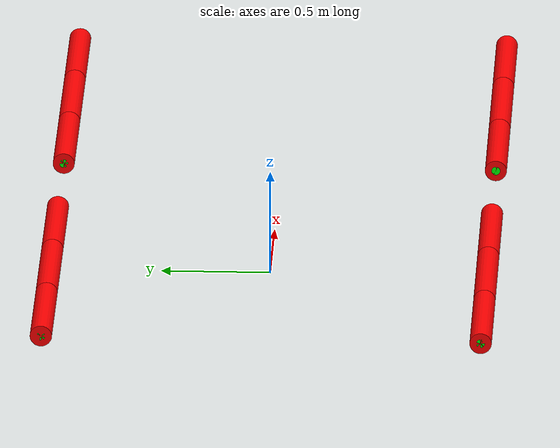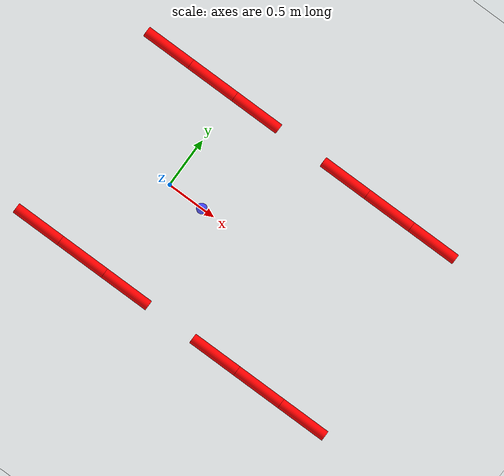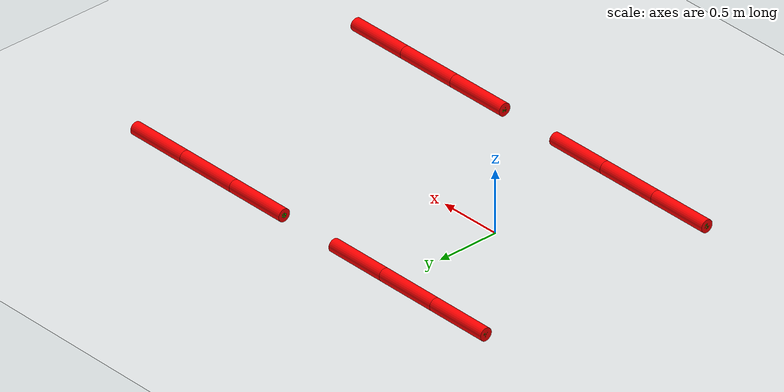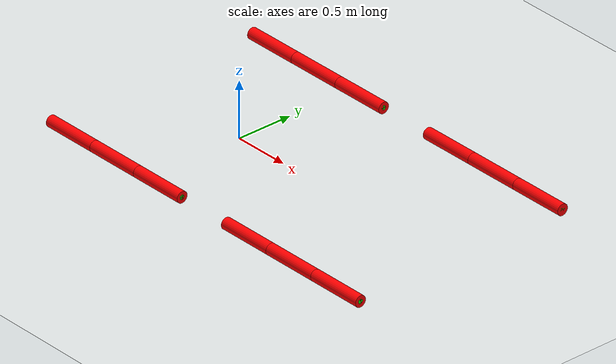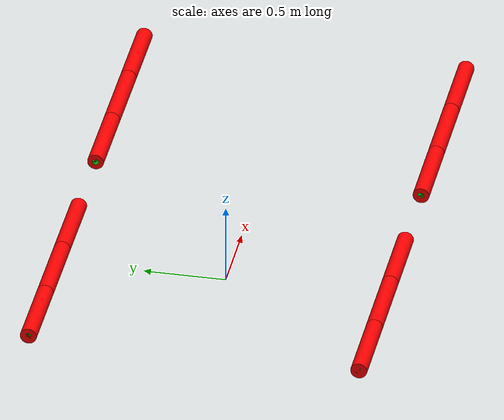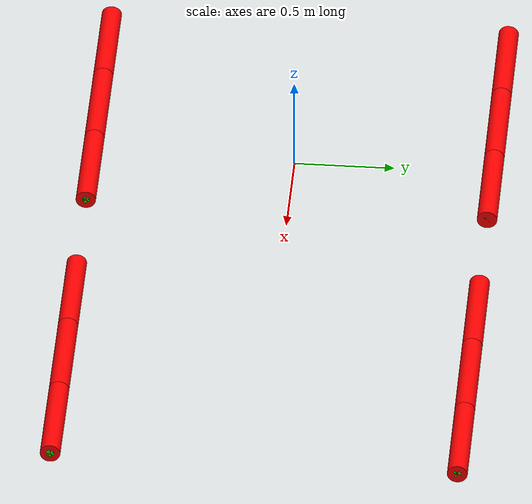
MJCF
<mujoco>
	<asset>
		<material name="red"   rgba="1 0 0 1"/>
		<material name="green" rgba="0 1 0 1"/>
		<material name="blue"  rgba="0 0 1 1"/>
		<material name="white" rgba="1 1 1 1"/>
		<material name="gray"  rgba=".5 .5 .5 1"/>
	</asset>

    <worldbody>
        <body name="link 0-0" pos="-0.75 -1 0.1" euler="0 90 0">
            <joint name="joint 0-0" type="hinge" axis="-1 0 0" pos="0 0 -0.25"/>
            <geom name="geom link 0-0" type="cylinder" size="0.05 0.25" material="red"/>
            <body name="link 0-1" pos="0 0 0.5" euler="0 0 0">
                <joint name="joint 0-1" type="hinge" axis="-1 0 0" pos="0 0 -0.25"/>
                <geom name="geom link 0-1" type="cylinder" size="0.05 0.25" material="red"/>
                <body name="link 0-2" pos="0 0 0.5" euler="0 0 0">
                    <joint name="joint 0-2" type="hinge" axis="-1 0 0" pos="0 0 -0.25"/>
                    <geom name="geom link 0-2" type="cylinder" size="0.05 0.25" material="red"/>
                </body>
            </body>
        </body>

        <body name="link 1-0" pos="1.25 -1 0.1" euler="0 90 0">
            <joint name="joint 1-0" type="hinge" axis="-1 0 0" pos="0 0 -0.25"/>
            <geom name="geom link 1-0" type="cylinder" size="0.05 0.25" material="red"/>
            <body name="link 1-1" pos="0 0 0.5" euler="0 0 0">
                <joint name="joint 1-1" type="hinge" axis="-1 0 0" pos="0 0 -0.25"/>
                <geom name="geom link 1-1" type="cylinder" size="0.05 0.25" material="red"/>
                <body name="link 1-2" pos="0 0 0.5" euler="0 0 0">
                    <joint name="joint 1-2" type="hinge" axis="-1 0 0" pos="0 0 -0.25"/>
                    <geom name="geom link 1-2" type="cylinder" size="0.05 0.25" material="red"/>
                </body>
            </body>
        </body>

        <body name="link 2-0" pos="1.25 1 0.1" euler="0 90 0">
            <joint name="joint 2-0" type="hinge" axis="-1 0 0" pos="0 0 -0.25"/>
            <geom name="geom link 2-0" type="cylinder" size="0.05 0.25" material="red"/>
            <body name="link 2-1" pos="0 0 0.5" euler="0 0 0">
                <joint name="joint 2-1" type="hinge" axis="-1 0 0" pos="0 0 -0.25"/>
                <geom name="geom link 2-1" type="cylinder" size="0.05 0.25" material="red"/>
                <body name="link 2-2" pos="0 0 0.5" euler="0 0 0">
                    <joint name="joint 2-2" type="hinge" axis="-1 0 0" pos="0 0 -0.25"/>
                    <geom name="geom link 2-2" type="cylinder" size="0.05 0.25" material="red"/>
                </body>
            </body>
        </body>

        <body name="link 3-0" pos="-0.75 1 0.1" euler="0 90 0">
            <joint name="joint 3-0" type="hinge" axis="-1 0 0" pos="0 0 -0.25"/>
            <geom name="geom link 3-0" type="cylinder" size="0.05 0.25" material="red"/>
            <body name="link 3-1" pos="0 0 0.5" euler="0 0 0">
                <joint name="joint 3-1" type="hinge" axis="-1 0 0" pos="0 0 -0.25"/>
                <geom name="geom link 3-1" type="cylinder" size="0.05 0.25" material="red"/>
                <body name="link 3-2" pos="0 0 0.5" euler="0 0 0">
                    <joint name="joint 3-2" type="hinge" axis="-1 0 0" pos="0 0 -0.25"/>
                    <geom name="geom link 3-2" type="cylinder" size="0.05 0.25" material="red"/>
                </body>
            </body>
        </body>

        <body name="link 0-0 shade" pos="-0.75 -1 0.1" euler="0 90 0">
            <joint name="joint 0-0 shade" type="hinge" axis="-1 0 0" pos="0 0 -0.25"/>
            <geom name="geom link 0-0 shade" type="cylinder" size="0.02 0.25" material="green" contype="0" conaffinity="0" />
            <body name="link 0-1 shade" pos="0 0 0.5" euler="0 0 0">
                <joint name="joint 0-1 shade" type="hinge" axis="-1 0 0" pos="0 0 -0.25"/>
                <geom name="geom link 0-1 shade" type="cylinder" size="0.02 0.25" material="green" contype="0" conaffinity="0" />
                <body name="link 0-2 shade" pos="0 0 0.5" euler="0 0 0">
                    <joint name="joint 0-2 shade" type="hinge" axis="-1 0 0" pos="0 0 -0.25"/>
                    <geom name="geom link 0-2 shade" type="cylinder" size="0.02 0.25" material="green" contype="0" conaffinity="0" />
                </body>
            </body>
        </body>

        <body name="link 1-0 shade" pos="1.25 -1 0.1" euler="0 90 0">
            <joint name="joint 1-0 shade" type="hinge" axis="-1 0 0" pos="0 0 -0.25"/>
            <geom name="geom link 1-0 shade" type="cylinder" size="0.02 0.25" material="green" contype="0" conaffinity="0" />
            <body name="link 1-1 shade" pos="0 0 0.5" euler="0 0 0">
                <joint name="joint 1-1 shade" type="hinge" axis="-1 0 0" pos="0 0 -0.25"/>
                <geom name="geom link 1-1 shade" type="cylinder" size="0.02 0.25" material="green" contype="0" conaffinity="0" />
                <body name="link 1-2 shade" pos="0 0 0.5" euler="0 0 0">
                    <joint name="joint 1-2 shade" type="hinge" axis="-1 0 0" pos="0 0 -0.25"/>
                    <geom name="geom link 1-2 shade" type="cylinder" size="0.02 0.25" material="green" contype="0" conaffinity="0" />
                </body>
            </body>
        </body>

        <body name="link 2-0 shade" pos="1.25 1 0.1" euler="0 90 0">
            <joint name="joint 2-0 shade" type="hinge" axis="-1 0 0" pos="0 0 -0.25"/>
            <geom name="geom link 2-0 shade" type="cylinder" size="0.02 0.25" material="green" contype="0" conaffinity="0" />
            <body name="link 2-1 shade" pos="0 0 0.5" euler="0 0 0">
                <joint name="joint 2-1 shade" type="hinge" axis="-1 0 0" pos="0 0 -0.25"/>
                <geom name="geom link 2-1 shade" type="cylinder" size="0.02 0.25" material="green" contype="0" conaffinity="0" />
                <body name="link 2-2 shade" pos="0 0 0.5" euler="0 0 0">
                    <joint name="joint 2-2 shade" type="hinge" axis="-1 0 0" pos="0 0 -0.25"/>
                    <geom name="geom link 2-2 shade" type="cylinder" size="0.02 0.25" material="green" contype="0" conaffinity="0" />
                </body>
            </body>
        </body>

        <body name="link 3-0 shade" pos="-0.75 1 0.1" euler="0 90 0">
            <joint name="joint 3-0 shade" type="hinge" axis="-1 0 0" pos="0 0 -0.25"/>
            <geom name="geom link 3-0 shade" type="cylinder" size="0.02 0.25" material="green" contype="0" conaffinity="0" />
            <body name="link 3-1 shade" pos="0 0 0.5" euler="0 0 0">
                <joint name="joint 3-1 shade" type="hinge" axis="-1 0 0" pos="0 0 -0.25"/>
                <geom name="geom link 3-1 shade" type="cylinder" size="0.02 0.25" material="green" contype="0" conaffinity="0" />
                <body name="link 3-2 shade" pos="0 0 0.5" euler="0 0 0">
                    <joint name="joint 3-2 shade" type="hinge" axis="-1 0 0" pos="0 0 -0.25"/>
                    <geom name="geom link 3-2 shade" type="cylinder" size="0.02 0.25" material="green" contype="0" conaffinity="0" />
                </body>
            </body>
        </body>

        <body name="sudo sphere">
            <geom name="sudo sphere 1" type="sphere" size="0.1" pos="0.0 0.0 -100.0" contype="0" conaffinity="0"  material="blue"/>
        </body>

        <light diffuse=".5 .5 .5" pos="0 0 10" dir="0 0 -1"/>
        <geom type="plane" size="4 3 0.1" rgba="1 1 1 1"/>

    </worldbody>
    <contact>
        <exclude body1="link 0-0" body2="link 0-1"/>
        <exclude body1="link 0-1" body2="link 0-2"/>
        <exclude body1="link 1-0" body2="link 1-1"/>
        <exclude body1="link 1-1" body2="link 1-2"/>
        <exclude body1="link 2-0" body2="link 2-1"/>
        <exclude body1="link 2-1" body2="link 2-2"/>
        <exclude body1="link 3-0" body2="link 3-1"/>
        <exclude body1="link 3-1" body2="link 3-2"/>
    </contact>
</mujoco>
